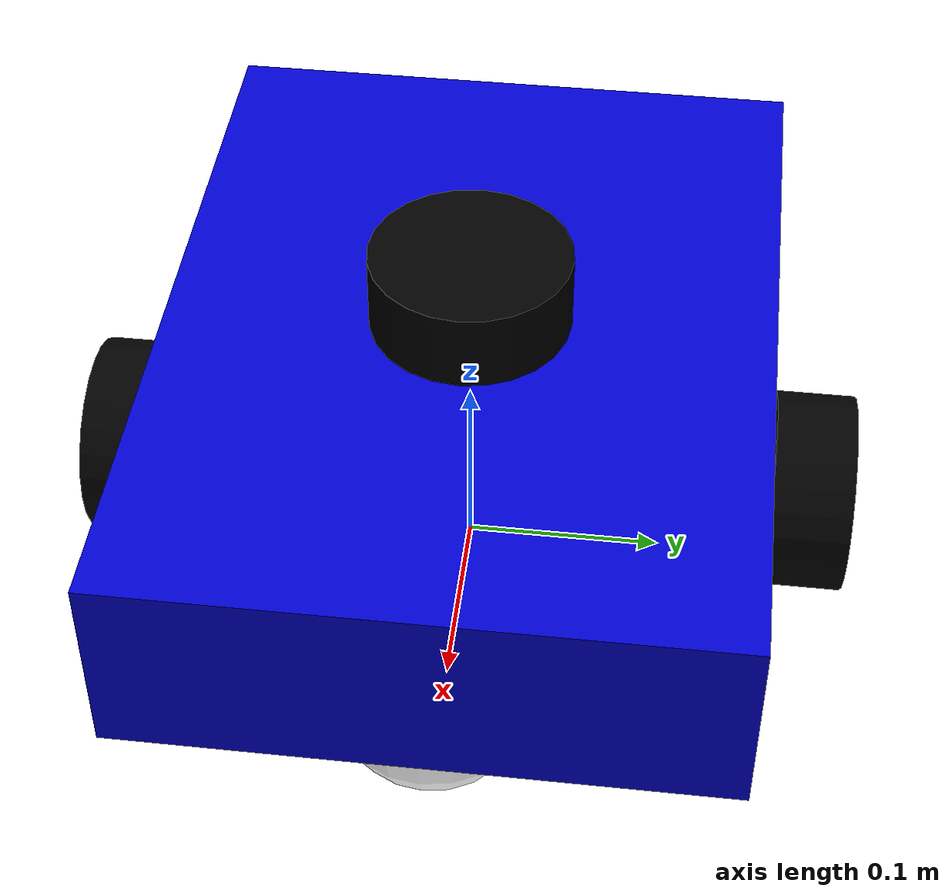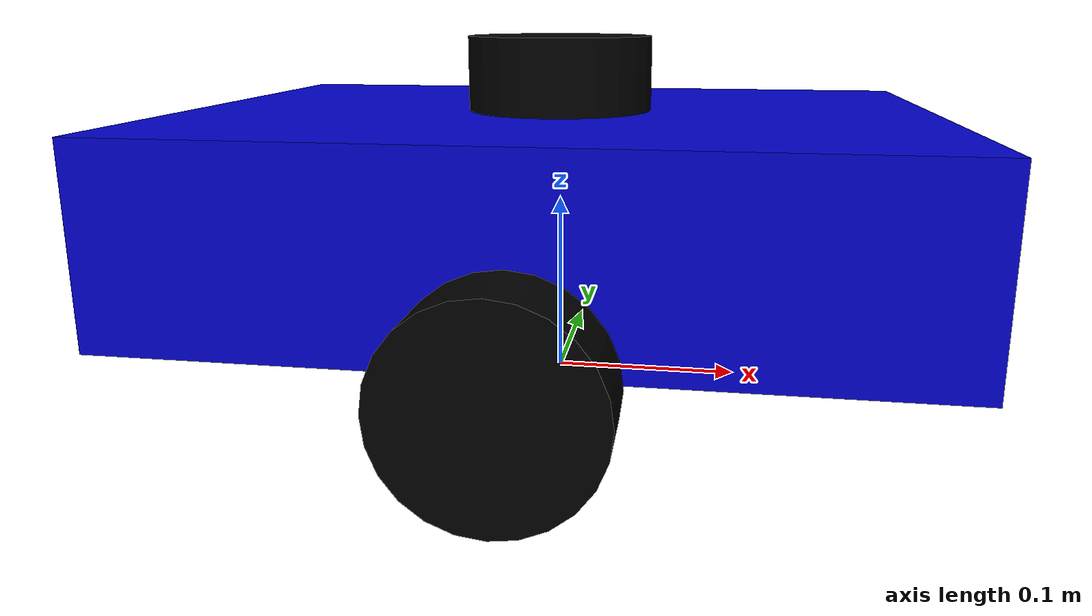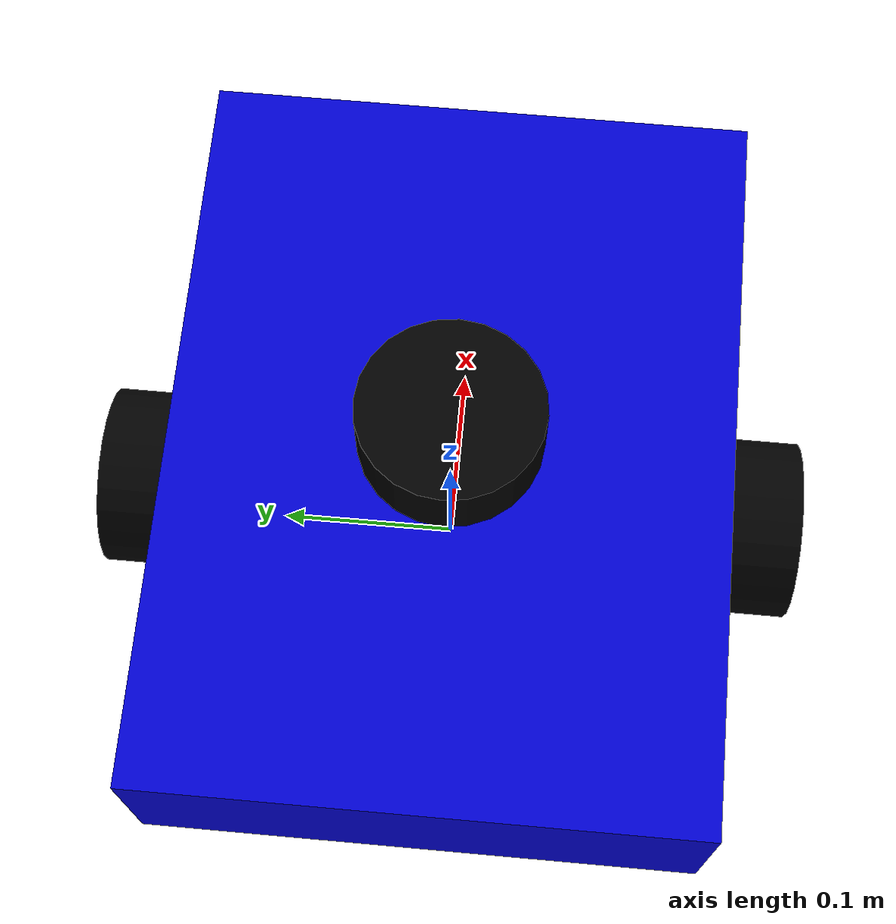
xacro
<?xml version="1.0"?>
<robot xmlns:xacro="http://www.ros.org/wiki/xacro" name="home_cleaner_bot">

  <material name="blue">
    <color rgba="0 0 0.8 1"/>
  </material>
  <material name="black">
    <color rgba="0 0 0 1"/>
  </material>
  <material name="white">
    <color rgba="1 1 1 1"/>
  </material>

  <link name="base_link">
    <visual>
      <geometry>
        <box size="0.4 0.3 0.1"/>
      </geometry>
      <material name="blue"/>
    </visual>
    <collision>
      <geometry>
        <box size="0.4 0.3 0.1"/>
      </geometry>
    </collision>
    <inertial>
      <mass value="5.0"/>
      <inertia ixx="0.1" ixy="0.0" ixz="0.0" iyy="0.1" iyz="0.0" izz="0.1"/>
    </inertial>
  </link>

  <link name="base_footprint"/>
  <joint name="base_joint" type="fixed">
    <parent link="base_footprint"/>
    <child link="base_link"/>
    <origin xyz="0 0 0.1" rpy="0 0 0"/>
  </joint>

  <link name="right_wheel">
    <visual>
      <geometry>
        <cylinder radius="0.05" length="0.04"/>
      </geometry>
      <material name="black"/>
    </visual>
    <collision>
      <geometry>
        <cylinder radius="0.05" length="0.04"/>
      </geometry>
    </collision>
    <inertial>
      <mass value="0.5"/>
      <inertia ixx="0.01" ixy="0.0" ixz="0.0" iyy="0.01" iyz="0.0" izz="0.01"/>
    </inertial>
  </link>

  <joint name="right_wheel_joint" type="continuous">
    <parent link="base_link"/>
    <child link="right_wheel"/>
    <origin xyz="0 -0.175 -0.05" rpy="1.5708 0 0"/>
    <axis xyz="0 0 -1"/>
  </joint>

  <link name="left_wheel">
    <visual>
      <geometry>
        <cylinder radius="0.05" length="0.04"/>
      </geometry>
      <material name="black"/>
    </visual>
    <collision>
      <geometry>
        <cylinder radius="0.05" length="0.04"/>
      </geometry>
    </collision>
    <inertial>
      <mass value="0.5"/>
      <inertia ixx="0.01" ixy="0.0" ixz="0.0" iyy="0.01" iyz="0.0" izz="0.01"/>
    </inertial>
  </link>

  <joint name="left_wheel_joint" type="continuous">
    <parent link="base_link"/>
    <child link="left_wheel"/>
    <origin xyz="0 0.175 -0.05" rpy="1.5708 0 0"/>
    <axis xyz="0 0 -1"/>
  </joint>

  <link name="caster_wheel">
    <visual>
      <geometry>
        <sphere radius="0.05"/>
      </geometry>
      <material name="white"/>
    </visual>
    <collision>
      <geometry>
        <sphere radius="0.05"/>
      </geometry>
    </collision>
    <inertial>
      <mass value="0.1"/>
      <inertia ixx="0.001" ixy="0.0" ixz="0.0" iyy="0.001" iyz="0.0" izz="0.001"/>
    </inertial>
  </link>

  <joint name="caster_wheel_joint" type="fixed">
    <parent link="base_link"/>
    <child link="caster_wheel"/>
    <origin xyz="0.15 0 -0.05" rpy="0 0 0"/>
  </joint>

  <link name="lidar_link">
    <visual>
      <geometry>
        <cylinder radius="0.05" length="0.04"/>
      </geometry>
      <material name="black"/>
    </visual>
  </link>

  <joint name="lidar_joint" type="fixed">
    <parent link="base_link"/>
    <child link="lidar_link"/>
    <origin xyz="0 0 0.07" rpy="0 0 0"/>
  </joint>

  <gazebo>
    <plugin filename="gz-sim-diff-drive-system" name="gz::sim::systems::DiffDrive">
      <left_joint>left_wheel_joint</left_joint>
      <right_joint>right_wheel_joint</right_joint>
      <wheel_separation>0.35</wheel_separation>
      <wheel_radius>0.05</wheel_radius>
      <odom_publish_frequency>50</odom_publish_frequency>
      <topic>cmd_vel</topic>
      <odom_topic>odom</odom_topic>
      <tf_topic>tf</tf_topic>
      <frame_id>odom</frame_id>
      <child_frame_id>base_footprint</child_frame_id>
    </plugin>

    <plugin filename="gz-sim-joint-state-publisher-system" name="gz::sim::systems::JointStatePublisher">
      <topic>joint_states</topic>
    </plugin>
  </gazebo>

  <gazebo reference="lidar_link">
    <sensor name="lidar" type="gpu_lidar">
      <always_on>true</always_on>
      <visualize>true</visualize>
      <update_rate>10</update_rate>
      <topic>scan</topic>
      <gz_frame_id>lidar_link</gz_frame_id>
      <ray>
        <scan>
          <horizontal>
            <samples>360</samples>
            <resolution>1</resolution>
            <min_angle>0.0</min_angle>
            <max_angle>6.28</max_angle>
          </horizontal>
        </scan>
        <range>
          <min>0.12</min>
          <max>3.5</max>
          <resolution>0.015</resolution>
        </range>
      </ray>
    </sensor>
  </gazebo>

</robot>
